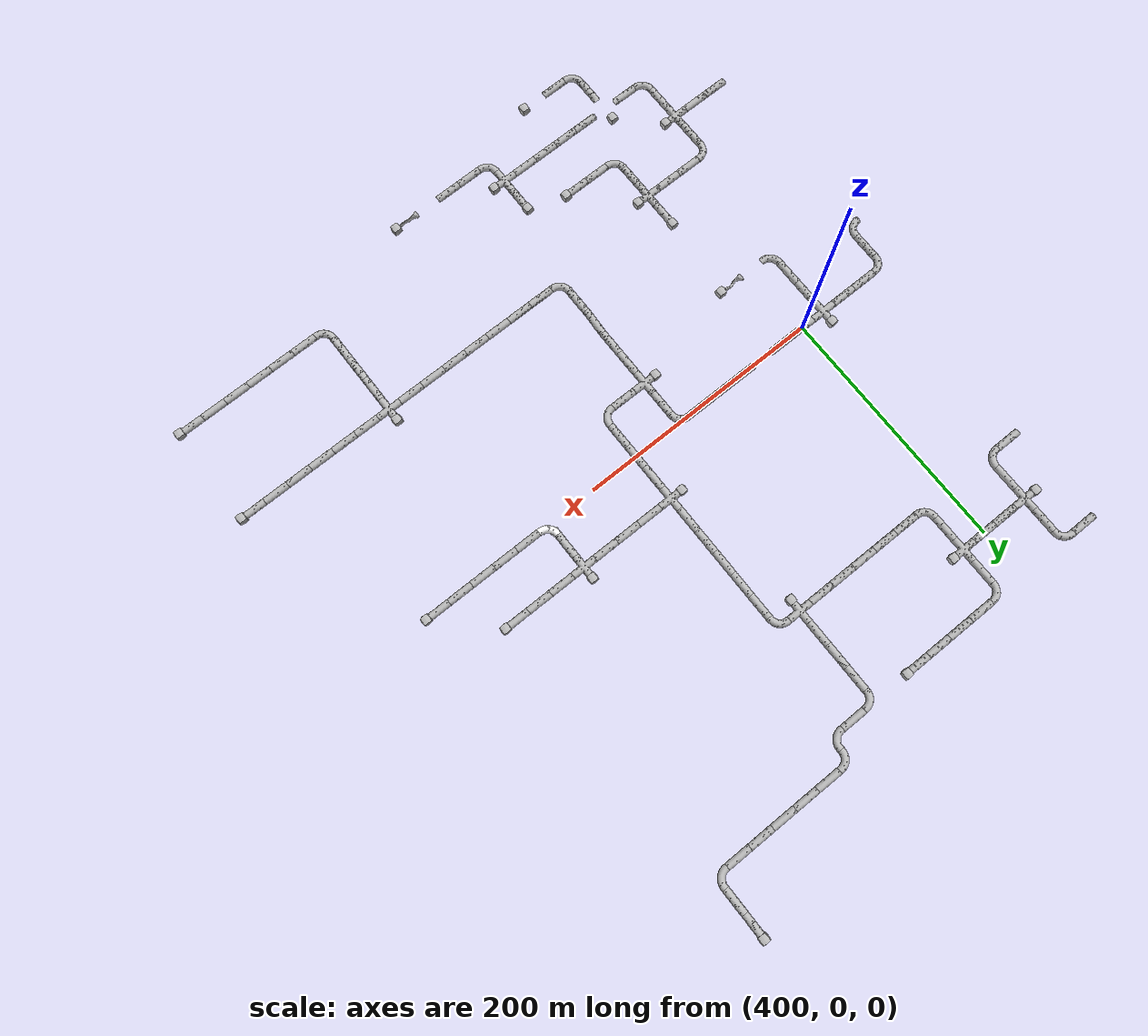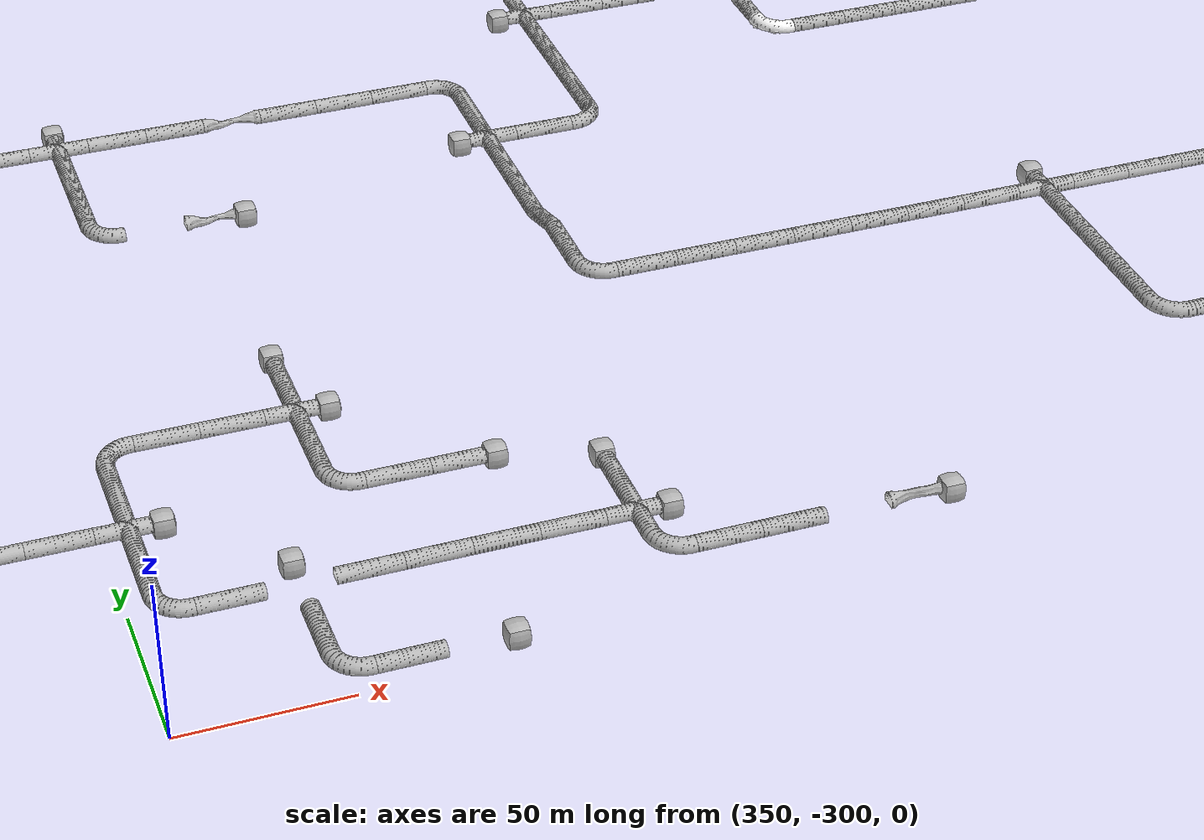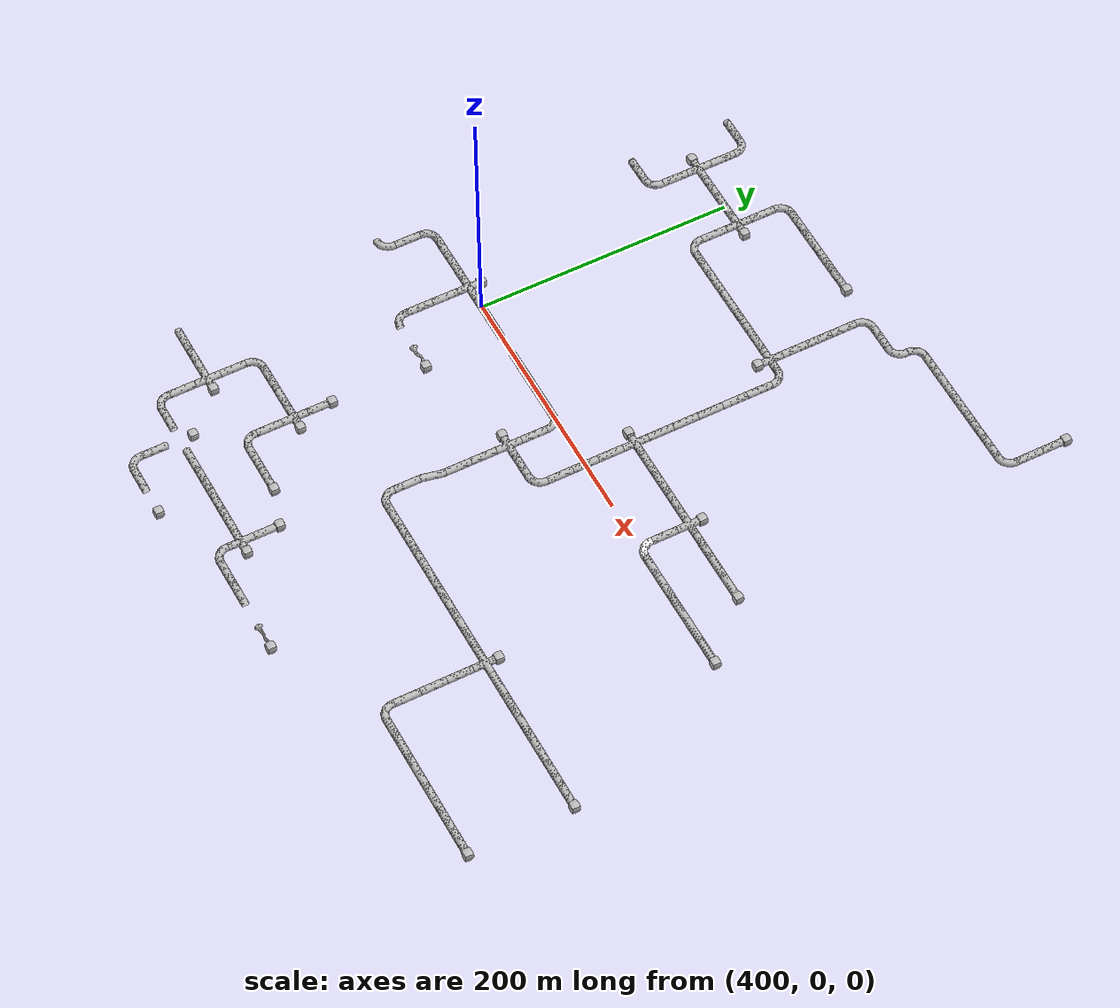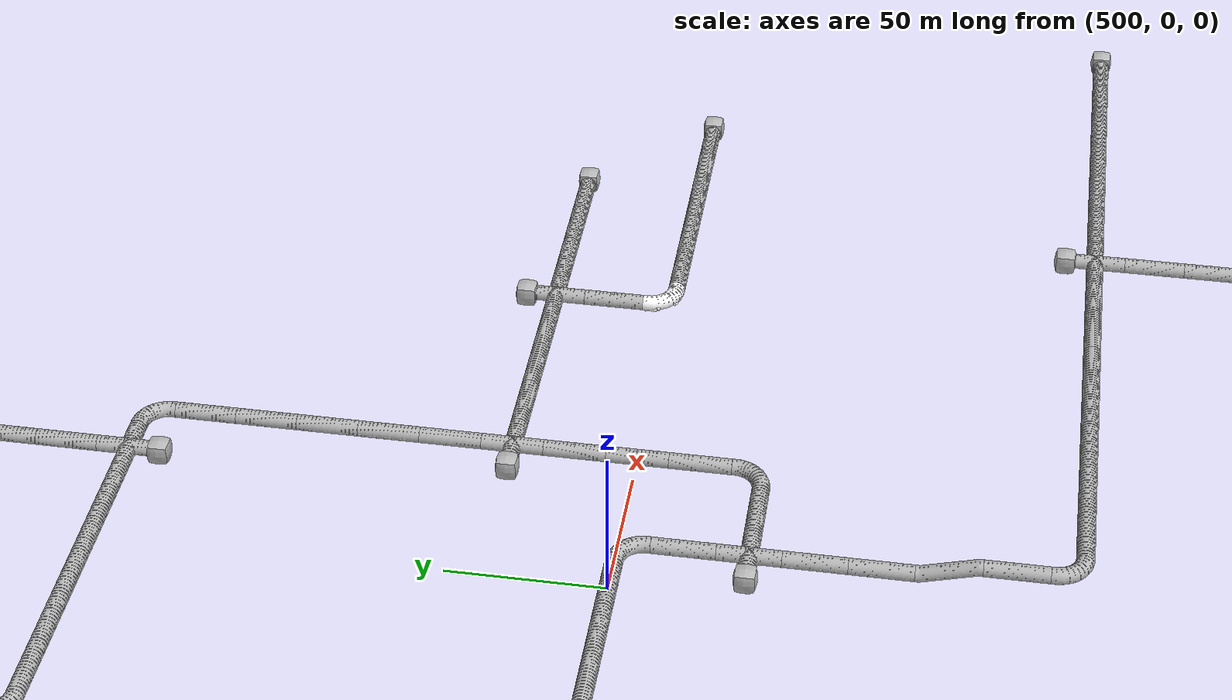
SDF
<sdf version="1.6">
 <world name="tunnel_circuit_02">
  <include>
   <name>tile_1</name>
   <uri>model://tunnel_tile_5</uri>
   <pose>700.000000 300.000000 0.000000 0 0 -3.141593</pose>
  </include>
  <include>
   <name>tile_2</name>
   <uri>model://tunnel_tile_blocker</uri>
   <pose>700.000000 310.000000 0.000000 0 0 0.000000</pose>
  </include>
  <include>
   <name>tile_5</name>
   <uri>model://tunnel_tile_5</uri>
   <pose>700.000000 280.000000 0.000000 0 0 -3.141593</pose>
  </include>
  <include>
   <name>tile_14</name>
   <uri>model://tunnel_tile_2</uri>
   <pose>580.000000 260.000000 0.000000 0 0 0.000000</pose>
  </include>
  <include>
   <name>tile_15</name>
   <uri>model://tunnel_tile_5</uri>
   <pose>600.000000 260.000000 0.000000 0 0 -1.570796</pose>
  </include>
  <include>
   <name>tile_16</name>
   <uri>model://tunnel_tile_5</uri>
   <pose>620.000000 260.000000 0.000000 0 0 -1.570796</pose>
  </include>
  <include>
   <name>tile_17</name>
   <uri>model://tunnel_tile_5</uri>
   <pose>640.000000 260.000000 0.000000 0 0 -1.570796</pose>
  </include>
  <include>
   <name>tile_18</name>
   <uri>model://tunnel_tile_5</uri>
   <pose>660.000000 260.000000 0.000000 0 0 -1.570796</pose>
  </include>
  <include>
   <name>tile_19</name>
   <uri>model://tunnel_tile_5</uri>
   <pose>680.000000 260.000000 0.000000 0 0 -1.570796</pose>
  </include>
  <include>
   <name>tile_20</name>
   <uri>model://tunnel_tile_2</uri>
   <pose>700.000000 260.000000 0.000000 0 0 -3.141593</pose>
  </include>
  <include>
   <name>tile_27</name>
   <uri>model://tunnel_tile_5</uri>
   <pose>340.000000 240.000000 0.000000 0 0 1.570796</pose>
  </include>
  <include>
   <name>tile_28</name>
   <uri>model://tunnel_tile_2</uri>
   <pose>360.000000 240.000000 0.000000 0 0 -1.570796</pose>
  </include>
  <include>
   <name>tile_29</name>
   <uri>model://tunnel_tile_2</uri>
   <pose>420.000000 240.000000 0.000000 0 0 0.000000</pose>
  </include>
  <include>
   <name>tile_30</name>
   <uri>model://tunnel_tile_5</uri>
   <pose>440.000000 240.000000 0.000000 0 0 -1.570796</pose>
  </include>
  <include>
   <name>tile_31</name>
   <uri>model://tunnel_tile_5</uri>
   <pose>460.000000 240.000000 0.000000 0 0 -1.570796</pose>
  </include>
  <include>
   <name>tile_32</name>
   <uri>model://tunnel_tile_5</uri>
   <pose>480.000000 240.000000 0.000000 0 0 -1.570796</pose>
  </include>
  <include>
   <name>tile_33</name>
   <uri>model://tunnel_tile_5</uri>
   <pose>500.000000 240.000000 0.000000 0 0 -1.570796</pose>
  </include>
  <include>
   <name>tile_34</name>
   <uri>model://tunnel_tile_blocker</uri>
   <pose>510.000000 240.000000 0.000000 0 0 0.000000</pose>
  </include>
  <include>
   <name>tile_35</name>
   <uri>model://tunnel_tile_2</uri>
   <pose>540.000000 240.000000 0.000000 0 0 0.000000</pose>
  </include>
  <include>
   <name>tile_36</name>
   <uri>model://tunnel_tile_5</uri>
   <pose>560.000000 240.000000 0.000000 0 0 -1.570796</pose>
  </include>
  <include>
   <name>tile_37</name>
   <uri>model://tunnel_tile_2</uri>
   <pose>580.000000 240.000000 0.000000 0 0 -3.141593</pose>
  </include>
  <include>
   <name>tile_41</name>
   <uri>model://tunnel_tile_5</uri>
   <pose>360.000000 220.000000 0.000000 0 0 -3.141593</pose>
  </include>
  <include>
   <name>tile_42</name>
   <uri>model://tunnel_tile_5</uri>
   <pose>420.000000 220.000000 0.000000 0 0 0.000000</pose>
  </include>
  <include>
   <name>tile_43</name>
   <uri>model://tunnel_tile_5</uri>
   <pose>540.000000 220.000000 0.000000 0 0 0.000000</pose>
  </include>
  <include>
   <name>phone_1</name>
   <uri>model://Phone</uri>
   <pose>540.450012 223.399994 0.000000 -1.570796 0 1.570796</pose>
  </include>
  <include>
   <name>tile_55</name>
   <uri>model://tunnel_tile_1</uri>
   <pose>360.000000 200.000000 0.000000 0 0 -1.570796</pose>
  </include>
  <include>
   <name>tile_56</name>
   <uri>model://tunnel_tile_blocker</uri>
   <pose>350.000000 200.000000 0.000000 0 0 0.000000</pose>
  </include>
  <include>
   <name>tile_57</name>
   <uri>model://tunnel_tile_5</uri>
   <pose>380.000000 200.000000 0.000000 0 0 -1.570796</pose>
  </include>
  <include>
   <name>tile_58</name>
   <uri>model://tunnel_tile_5</uri>
   <pose>400.000000 200.000000 0.000000 0 0 -1.570796</pose>
  </include>
  <include>
   <name>tile_59</name>
   <uri>model://tunnel_tile_1</uri>
   <pose>420.000000 200.000000 0.000000 0 0 -1.570796</pose>
  </include>
  <include>
   <name>tile_60</name>
   <uri>model://tunnel_tile_blocker</uri>
   <pose>430.000000 200.000000 0.000000 0 0 0.000000</pose>
  </include>
  <include>
   <name>tile_61</name>
   <uri>model://tunnel_tile_5</uri>
   <pose>540.000000 200.000000 0.000000 0 0 0.000000</pose>
  </include>
  <include>
   <name>tile_65</name>
   <uri>model://tunnel_tile_5</uri>
   <pose>360.000000 180.000000 0.000000 0 0 -3.141593</pose>
  </include>
  <include>
   <name>tile_66</name>
   <uri>model://tunnel_tile_5</uri>
   <pose>420.000000 180.000000 0.000000 0 0 0.000000</pose>
  </include>
  <include>
   <name>tile_67</name>
   <uri>model://tunnel_tile_5</uri>
   <pose>540.000000 180.000000 0.000000 0 0 0.000000</pose>
  </include>
  <include>
   <name>tile_76</name>
   <uri>model://tunnel_tile_5</uri>
   <pose>340.000000 160.000000 0.000000 0 0 1.570796</pose>
  </include>
  <include>
   <name>tile_77</name>
   <uri>model://tunnel_tile_2</uri>
   <pose>360.000000 160.000000 0.000000 0 0 -3.141593</pose>
  </include>
  <include>
   <name>tile_78</name>
   <uri>model://tunnel_tile_2</uri>
   <pose>420.000000 160.000000 0.000000 0 0 1.570796</pose>
  </include>
  <include>
   <name>tile_79</name>
   <uri>model://tunnel_tile_5</uri>
   <pose>440.000000 160.000000 0.000000 0 0 1.570796</pose>
  </include>
  <include>
   <name>tile_80</name>
   <uri>model://tunnel_tile_5</uri>
   <pose>460.000000 160.000000 0.000000 0 0 1.570796</pose>
  </include>
  <include>
   <name>tile_81</name>
   <uri>model://tunnel_tile_5</uri>
   <pose>480.000000 160.000000 0.000000 0 0 1.570796</pose>
  </include>
  <include>
   <name>tile_82</name>
   <uri>model://tunnel_tile_5</uri>
   <pose>500.000000 160.000000 0.000000 0 0 1.570796</pose>
  </include>
  <include>
   <name>tile_83</name>
   <uri>model://tunnel_tile_5</uri>
   <pose>520.000000 160.000000 0.000000 0 0 1.570796</pose>
  </include>
  <include>
   <name>tile_84</name>
   <uri>model://tunnel_tile_1</uri>
   <pose>540.000000 160.000000 0.000000 0 0 -3.141593</pose>
  </include>
  <include>
   <name>tile_85</name>
   <uri>model://tunnel_tile_blocker</uri>
   <pose>540.000000 150.000000 0.000000 0 0 0.000000</pose>
  </include>
  <include>
   <name>tile_86</name>
   <uri>model://tunnel_tile_2</uri>
   <pose>560.000000 160.000000 0.000000 0 0 -1.570796</pose>
  </include>
  <include>
   <name>tile_89</name>
   <uri>model://tunnel_tile_5</uri>
   <pose>560.000000 140.000000 0.000000 0 0 0.000000</pose>
  </include>
  <include>
   <name>tile_92</name>
   <uri>model://tunnel_tile_5</uri>
   <pose>560.000000 120.000000 0.000000 0 0 0.000000</pose>
  </include>
  <include>
   <name>tile_96</name>
   <uri>model://tunnel_tile_5</uri>
   <pose>560.000000 100.000000 0.000000 0 0 0.000000</pose>
  </include>
  <include>
   <name>tile_99</name>
   <uri>model://tunnel_tile_5</uri>
   <pose>560.000000 80.000000 0.000000 0 0 0.000000</pose>
  </include>
  <include>
   <name>tile_101</name>
   <uri>model://tunnel_tile_5</uri>
   <pose>560.000000 60.000000 0.000000 0 0 0.000000</pose>
  </include>
  <include>
   <name>tile_108</name>
   <uri>model://tunnel_tile_1</uri>
   <pose>560.000000 40.000000 0.000000 0 0 0.000000</pose>
  </include>
  <include>
   <name>tile_109</name>
   <uri>model://tunnel_tile_blocker</uri>
   <pose>550.000000 40.000000 0.000000 0 0 0.000000</pose>
  </include>
  <include>
   <name>tile_110</name>
   <uri>model://tunnel_tile_5</uri>
   <pose>580.000000 40.000000 0.000000 0 0 -1.570796</pose>
  </include>
  <include>
   <name>tile_111</name>
   <uri>model://tunnel_tile_5</uri>
   <pose>600.000000 40.000000 0.000000 0 0 -1.570796</pose>
  </include>
  <include>
   <name>tile_112</name>
   <uri>model://tunnel_tile_5</uri>
   <pose>620.000000 40.000000 0.000000 0 0 -1.570796</pose>
  </include>
  <include>
   <name>tile_113</name>
   <uri>model://tunnel_tile_1</uri>
   <pose>640.000000 40.000000 0.000000 0 0 -1.570796</pose>
  </include>
  <include>
   <name>tile_114</name>
   <uri>model://tunnel_tile_blocker</uri>
   <pose>640.000000 50.000000 0.000000 0 0 0.000000</pose>
  </include>
  <include>
   <name>tile_115</name>
   <uri>model://tunnel_tile_5</uri>
   <pose>660.000000 40.000000 0.000000 0 0 -1.570796</pose>
  </include>
  <include>
   <name>tile_116</name>
   <uri>model://tunnel_tile_5</uri>
   <pose>680.000000 40.000000 0.000000 0 0 -1.570796</pose>
  </include>
  <include>
   <name>tile_117</name>
   <uri>model://tunnel_tile_5</uri>
   <pose>700.000000 40.000000 0.000000 0 0 -1.570796</pose>
  </include>
  <include>
   <name>tile_118</name>
   <uri>model://tunnel_tile_blocker</uri>
   <pose>710.000000 40.000000 0.000000 0 0 0.000000</pose>
  </include>
  <include>
   <name>tile_123</name>
   <uri>model://tunnel_tile_5</uri>
   <pose>560.000000 20.000000 0.000000 0 0 0.000000</pose>
  </include>
  <include>
   <name>tile_124</name>
   <uri>model://tunnel_tile_5</uri>
   <pose>640.000000 20.000000 0.000000 0 0 -3.141593</pose>
  </include>
  <include>
   <name>tile_139</name>
   <uri>model://tunnel_tile_2</uri>
   <pose>320.000000 0.000000 0.000000 0 0 0.000000</pose>
  </include>
  <include>
   <name>tile_140</name>
   <uri>model://tunnel_tile_5</uri>
   <pose>340.000000 0.000000 0.000000 0 0 -1.570796</pose>
  </include>
  <include>
   <name>tile_141</name>
   <uri>model://tunnel_tile_5</uri>
   <pose>360.000000 0.000000 0.000000 0 0 -1.570796</pose>
  </include>
  <include>
   <name>tile_142</name>
   <uri>model://tunnel_tile_1</uri>
   <pose>380.000000 0.000000 0.000000 0 0 -1.570796</pose>
  </include>
  <include>
   <name>tile_143</name>
   <uri>model://tunnel_tile_blocker</uri>
   <pose>380.000000 10.000000 0.000000 0 0 0.000000</pose>
  </include>
  <include>
   <name>tile_144</name>
   <uri>model://tunnel_tile_5</uri>
   <pose>400.000000 0.000000 0.000000 0 0 1.570796</pose>
  </include>
  <include>
   <name>tile_145</name>
   <uri>model://tunnel_tile_5</uri>
   <pose>420.000000 0.000000 0.000000 0 0 1.570796</pose>
  </include>
  <include>
   <name>tile_146</name>
   <uri>model://constrained_tunnel_tile_short</uri>
   <pose>440.000000 0.000000 0.000000 0 0 1.570796</pose>
  </include>
  <include>
   <name>tile_147</name>
   <uri>model://tunnel_tile_5</uri>
   <pose>460.000000 0.000000 0.000000 0 0 1.570796</pose>
  </include>
  <include>
   <name>tile_148</name>
   <uri>model://tunnel_tile_5</uri>
   <pose>480.000000 0.000000 0.000000 0 0 1.570796</pose>
  </include>
  <include>
   <name>tile_149</name>
   <uri>model://tunnel_tile_5</uri>
   <pose>500.000000 0.000000 0.000000 0 0 1.570796</pose>
  </include>
  <include>
   <name>tile_150</name>
   <uri>model://tunnel_tile_2</uri>
   <pose>520.000000 0.000000 0.000000 0 0 -1.570796</pose>
  </include>
  <include>
   <name>tile_151</name>
   <uri>model://tunnel_tile_5</uri>
   <pose>560.000000 0.000000 0.000000 0 0 0.000000</pose>
  </include>
  <include>
   <name>tile_152</name>
   <uri>model://Rough Tunnel Tile 90-degree Turn</uri>
   <pose>640.000000 0.000000 0.000000 0 0 1.570796</pose>
  </include>
  <include>
   <name>tile_153</name>
   <uri>model://tunnel_tile_5</uri>
   <pose>660.000000 0.000000 0.000000 0 0 1.570796</pose>
  </include>
  <include>
   <name>tile_154</name>
   <uri>model://tunnel_tile_5</uri>
   <pose>680.000000 0.000000 0.000000 0 0 1.570796</pose>
  </include>
  <include>
   <name>tile_155</name>
   <uri>model://tunnel_tile_5</uri>
   <pose>700.000000 0.000000 0.000000 0 0 1.570796</pose>
  </include>
  <include>
   <name>tile_156</name>
   <uri>model://tunnel_tile_5</uri>
   <pose>720.000000 0.000000 0.000000 0 0 1.570796</pose>
  </include>
  <include>
   <name>tile_157</name>
   <uri>model://tunnel_tile_5</uri>
   <pose>740.000000 0.000000 0.000000 0 0 1.570796</pose>
  </include>
  <include>
   <name>tile_158</name>
   <uri>model://tunnel_tile_blocker</uri>
   <pose>750.000000 0.000000 0.000000 0 0 0.000000</pose>
  </include>
  <include>
   <name>tile_162</name>
   <uri>model://tunnel_tile_5</uri>
   <pose>320.000000 -20.000000 0.000000 0 0 -3.141593</pose>
  </include>
  <include>
   <name>tile_163</name>
   <uri>model://tunnel_tile_5</uri>
   <pose>380.000000 -20.000000 0.000000 0 0 -3.141593</pose>
  </include>
  <include>
   <name>tile_164</name>
   <uri>model://tunnel_tile_5</uri>
   <pose>520.000000 -20.000000 0.000000 0 0 -3.141593</pose>
  </include>
  <include>
   <name>tile_165</name>
   <uri>model://tunnel_tile_5</uri>
   <pose>560.000000 -20.000000 0.000000 0 0 0.000000</pose>
  </include>
  <include>
   <name>backpack_3</name>
   <uri>model://Backpack</uri>
   <pose>560.992004 -7.976880 0.100000 -1.570796 0 -3.141593</pose>
  </include>
  <include>
   <name>tile_175</name>
   <uri>model://tunnel_tile_2</uri>
   <pose>320.000000 -40.000000 0.000000 0 0 -3.141593</pose>
  </include>
  <include>
   <name>tile_176</name>
   <uri>model://tunnel_tile_5</uri>
   <pose>380.000000 -40.000000 0.000000 0 0 -3.141593</pose>
  </include>
  <include>
   <name>tile_177</name>
   <uri>model://tunnel_tile_1</uri>
   <pose>520.000000 -40.000000 0.000000 0 0 -3.141593</pose>
  </include>
  <include>
   <name>tile_178</name>
   <uri>model://tunnel_tile_blocker</uri>
   <pose>510.000000 -40.000000 0.000000 0 0 0.000000</pose>
  </include>
  <include>
   <name>tile_179</name>
   <uri>model://tunnel_tile_5</uri>
   <pose>540.000000 -40.000000 0.000000 0 0 1.570796</pose>
  </include>
  <include>
   <name>tile_180</name>
   <uri>model://tunnel_tile_2</uri>
   <pose>560.000000 -40.000000 0.000000 0 0 -3.141593</pose>
  </include>
  <include>
   <name>tile_184</name>
   <uri>model://tunnel_tile_2</uri>
   <pose>380.000000 -60.000000 0.000000 0 0 1.570796</pose>
  </include>
  <include>
   <name>tile_186</name>
   <uri>model://constrained_tunnel_tile_short</uri>
   <pose>420.000000 -60.000000 0.000000 0 0 1.570796</pose>
  </include>
  <include>
   <name>tile_187</name>
   <uri>model://tunnel_tile_blocker</uri>
   <pose>430.000000 -60.000000 0.000000 0 0 0.000000</pose>
  </include>
  <include>
   <name>tile_188</name>
   <uri>model://tunnel_tile_5</uri>
   <pose>520.000000 -60.000000 0.000000 0 0 -3.141593</pose>
  </include>
  <include>
   <name>tile_193</name>
   <uri>model://tunnel_tile_5</uri>
   <pose>520.000000 -80.000000 0.000000 0 0 -3.141593</pose>
  </include>
  <include>
   <name>tile_197</name>
   <uri>model://tunnel_tile_6</uri>
   <pose>520.000000 -100.000000 0.000000 0 0 -3.141593</pose>
  </include>
  <include>
   <name>tile_208</name>
   <uri>model://tunnel_tile_5</uri>
   <pose>520.000000 -120.000000 5.000000 0 0 -3.141593</pose>
  </include>
  <include>
   <name>tile_213</name>
   <uri>model://tunnel_tile_5</uri>
   <pose>420.000000 -140.000000 -10.000000 0 0 0.000000</pose>
  </include>
  <include>
   <name>tile_214</name>
   <uri>model://tunnel_tile_blocker</uri>
   <pose>420.000000 -130.000000 -10.000000 0 0 0.000000</pose>
  </include>
  <include>
   <name>tile_215</name>
   <uri>model://tunnel_tile_2</uri>
   <pose>520.000000 -140.000000 5.000000 0 0 1.570796</pose>
  </include>
  <include>
   <name>tile_216</name>
   <uri>model://tunnel_tile_5</uri>
   <pose>540.000000 -140.000000 5.000000 0 0 1.570796</pose>
  </include>
  <include>
   <name>tile_217</name>
   <uri>model://tunnel_tile_5</uri>
   <pose>560.000000 -140.000000 5.000000 0 0 1.570796</pose>
  </include>
  <include>
   <name>tile_218</name>
   <uri>model://tunnel_tile_5</uri>
   <pose>580.000000 -140.000000 5.000000 0 0 1.570796</pose>
  </include>
  <include>
   <name>tile_219</name>
   <uri>model://tunnel_tile_5</uri>
   <pose>600.000000 -140.000000 5.000000 0 0 1.570796</pose>
  </include>
  <include>
   <name>tile_220</name>
   <uri>model://tunnel_tile_5</uri>
   <pose>620.000000 -140.000000 5.000000 0 0 1.570796</pose>
  </include>
  <include>
   <name>tile_221</name>
   <uri>model://tunnel_tile_5</uri>
   <pose>640.000000 -140.000000 5.000000 0 0 1.570796</pose>
  </include>
  <include>
   <name>tile_222</name>
   <uri>model://tunnel_tile_5</uri>
   <pose>660.000000 -140.000000 5.000000 0 0 1.570796</pose>
  </include>
  <include>
   <name>tile_223</name>
   <uri>model://tunnel_tile_1</uri>
   <pose>680.000000 -140.000000 5.000000 0 0 1.570796</pose>
  </include>
  <include>
   <name>tile_224</name>
   <uri>model://tunnel_tile_blocker</uri>
   <pose>680.000000 -130.000000 5.000000 0 0 0.000000</pose>
  </include>
  <include>
   <name>tile_225</name>
   <uri>model://tunnel_tile_5</uri>
   <pose>700.000000 -140.000000 5.000000 0 0 1.570796</pose>
  </include>
  <include>
   <name>tile_226</name>
   <uri>model://tunnel_tile_5</uri>
   <pose>720.000000 -140.000000 5.000000 0 0 1.570796</pose>
  </include>
  <include>
   <name>tile_227</name>
   <uri>model://tunnel_tile_5</uri>
   <pose>740.000000 -140.000000 5.000000 0 0 1.570796</pose>
  </include>
  <include>
   <name>tile_228</name>
   <uri>model://tunnel_tile_5</uri>
   <pose>760.000000 -140.000000 5.000000 0 0 1.570796</pose>
  </include>
  <include>
   <name>tile_229</name>
   <uri>model://tunnel_tile_5</uri>
   <pose>780.000000 -140.000000 5.000000 0 0 1.570796</pose>
  </include>
  <include>
   <name>tile_230</name>
   <uri>model://tunnel_tile_5</uri>
   <pose>800.000000 -140.000000 5.000000 0 0 1.570796</pose>
  </include>
  <include>
   <name>tile_231</name>
   <uri>model://tunnel_tile_blocker</uri>
   <pose>810.000000 -140.000000 5.000000 0 0 0.000000</pose>
  </include>
  <include>
   <name>tile_244</name>
   <uri>model://tunnel_tile_2</uri>
   <pose>360.000000 -160.000000 -10.000000 0 0 0.000000</pose>
  </include>
  <include>
   <name>tile_245</name>
   <uri>model://tunnel_tile_5</uri>
   <pose>380.000000 -160.000000 -10.000000 0 0 -1.570796</pose>
  </include>
  <include>
   <name>tile_246</name>
   <uri>model://tunnel_tile_5</uri>
   <pose>400.000000 -160.000000 -10.000000 0 0 -1.570796</pose>
  </include>
  <include>
   <name>tile_247</name>
   <uri>model://tunnel_tile_1</uri>
   <pose>420.000000 -160.000000 -10.000000 0 0 -1.570796</pose>
  </include>
  <include>
   <name>tile_248</name>
   <uri>model://tunnel_tile_blocker</uri>
   <pose>430.000000 -160.000000 -10.000000 0 0 0.000000</pose>
  </include>
  <include>
   <name>tile_249</name>
   <uri>model://tunnel_tile_5</uri>
   <pose>680.000000 -160.000000 5.000000 0 0 -3.141593</pose>
  </include>
  <include>
   <name>tile_253</name>
   <uri>model://tunnel_tile_5</uri>
   <pose>360.000000 -180.000000 -10.000000 0 0 0.000000</pose>
  </include>
  <include>
   <name>tile_254</name>
   <uri>model://tunnel_tile_5</uri>
   <pose>420.000000 -180.000000 -10.000000 0 0 -3.141593</pose>
  </include>
  <include>
   <name>tile_255</name>
   <uri>model://tunnel_tile_5</uri>
   <pose>680.000000 -180.000000 5.000000 0 0 -3.141593</pose>
  </include>
  <include>
   <name>tile_263</name>
   <uri>model://tunnel_tile_5</uri>
   <pose>320.000000 -200.000000 -10.000000 0 0 1.570796</pose>
  </include>
  <include>
   <name>tile_264</name>
   <uri>model://tunnel_tile_5</uri>
   <pose>340.000000 -200.000000 -10.000000 0 0 1.570796</pose>
  </include>
  <include>
   <name>tile_265</name>
   <uri>model://tunnel_tile_1</uri>
   <pose>360.000000 -200.000000 -10.000000 0 0 1.570796</pose>
  </include>
  <include>
   <name>tile_266</name>
   <uri>model://tunnel_tile_blocker</uri>
   <pose>370.000000 -200.000000 -10.000000 0 0 0.000000</pose>
  </include>
  <include>
   <name>tile_267</name>
   <uri>model://tunnel_tile_2</uri>
   <pose>420.000000 -200.000000 -10.000000 0 0 1.570796</pose>
  </include>
  <include>
   <name>tile_268</name>
   <uri>model://tunnel_tile_5</uri>
   <pose>440.000000 -200.000000 -10.000000 0 0 1.570796</pose>
  </include>
  <include>
   <name>tile_269</name>
   <uri>model://tunnel_tile_5</uri>
   <pose>460.000000 -200.000000 -10.000000 0 0 1.570796</pose>
  </include>
  <include>
   <name>tile_270</name>
   <uri>model://tunnel_tile_blocker</uri>
   <pose>470.000000 -200.000000 -10.000000 0 0 0.000000</pose>
  </include>
  <include>
   <name>tile_271</name>
   <uri>model://tunnel_tile_5</uri>
   <pose>680.000000 -200.000000 5.000000 0 0 -3.141593</pose>
  </include>
  <include>
   <name>tile_277</name>
   <uri>model://tunnel_tile_5</uri>
   <pose>360.000000 -220.000000 -10.000000 0 0 0.000000</pose>
  </include>
  <include>
   <name>tile_278</name>
   <uri>model://tunnel_tile_5</uri>
   <pose>500.000000 -220.000000 -10.000000 0 0 0.000000</pose>
  </include>
  <include>
   <name>tile_279</name>
   <uri>model://tunnel_tile_blocker</uri>
   <pose>500.000000 -210.000000 -10.000000 0 0 0.000000</pose>
  </include>
  <include>
   <name>tile_280</name>
   <uri>model://tunnel_tile_2</uri>
   <pose>680.000000 -220.000000 5.000000 0 0 1.570796</pose>
  </include>
  <include>
   <name>phone_3</name>
   <uri>model://Phone</uri>
   <pose>678.984009 -211.507996 5.006000 -1.570796 0 1.570796</pose>
  </include>
  <include>
   <name>tile_281</name>
   <uri>model://tunnel_tile_5</uri>
   <pose>700.000000 -220.000000 5.000000 0 0 1.570796</pose>
  </include>
  <include>
   <name>tile_282</name>
   <uri>model://tunnel_tile_5</uri>
   <pose>720.000000 -220.000000 5.000000 0 0 1.570796</pose>
  </include>
  <include>
   <name>tile_283</name>
   <uri>model://tunnel_tile_5</uri>
   <pose>740.000000 -220.000000 5.000000 0 0 1.570796</pose>
  </include>
  <include>
   <name>tile_284</name>
   <uri>model://tunnel_tile_5</uri>
   <pose>760.000000 -220.000000 5.000000 0 0 1.570796</pose>
  </include>
  <include>
   <name>tile_285</name>
   <uri>model://tunnel_tile_5</uri>
   <pose>780.000000 -220.000000 5.000000 0 0 1.570796</pose>
  </include>
  <include>
   <name>tile_286</name>
   <uri>model://tunnel_tile_5</uri>
   <pose>800.000000 -220.000000 5.000000 0 0 1.570796</pose>
  </include>
  <include>
   <name>tile_287</name>
   <uri>model://tunnel_tile_blocker</uri>
   <pose>810.000000 -220.000000 5.000000 0 0 0.000000</pose>
  </include>
  <include>
   <name>tile_289</name>
   <uri>model://tunnel_tile_2</uri>
   <pose>360.000000 -240.000000 -10.000000 0 0 1.570796</pose>
  </include>
  <include>
   <name>tile_290</name>
   <uri>model://tunnel_tile_5</uri>
   <pose>380.000000 -240.000000 -10.000000 0 0 1.570796</pose>
  </include>
  <include>
   <name>tile_292</name>
   <uri>model://tunnel_tile_blocker</uri>
   <pose>400.000000 -230.000000 -10.000000 0 0 0.000000</pose>
  </include>
  <include>
   <name>tile_293</name>
   <uri>model://tunnel_tile_5</uri>
   <pose>420.000000 -240.000000 -10.000000 0 0 1.570796</pose>
  </include>
  <include>
   <name>tile_294</name>
   <uri>model://tunnel_tile_5</uri>
   <pose>440.000000 -240.000000 -10.000000 0 0 1.570796</pose>
  </include>
  <include>
   <name>tile_295</name>
   <uri>model://tunnel_tile_5</uri>
   <pose>460.000000 -240.000000 -10.000000 0 0 1.570796</pose>
  </include>
  <include>
   <name>tile_296</name>
   <uri>model://tunnel_tile_5</uri>
   <pose>480.000000 -240.000000 -10.000000 0 0 1.570796</pose>
  </include>
  <include>
   <name>tile_297</name>
   <uri>model://tunnel_tile_1</uri>
   <pose>500.000000 -240.000000 -10.000000 0 0 0.000000</pose>
  </include>
  <include>
   <name>tile_298</name>
   <uri>model://tunnel_tile_blocker</uri>
   <pose>510.000000 -240.000000 -10.000000 0 0 0.000000</pose>
  </include>
  <include>
   <name>tile_313</name>
   <uri>model://tunnel_tile_5</uri>
   <pose>400.000000 -260.000000 -10.000000 0 0 0.000000</pose>
  </include>
  <include>
   <name>phone_4</name>
   <uri>model://Phone</uri>
   <pose>417.500000 -242.475998 -10.002000 -0.349066 0 -3.141593</pose>
  </include>
  <include>
   <name>tile_314</name>
   <uri>model://tunnel_tile_2</uri>
   <pose>500.000000 -260.000000 -10.000000 0 0 1.570796</pose>
  </include>
  <include>
   <name>tile_315</name>
   <uri>model://tunnel_tile_5</uri>
   <pose>520.000000 -260.000000 -10.000000 0 0 1.570796</pose>
  </include>
  <include>
   <name>tile_316</name>
   <uri>model://tunnel_tile_5</uri>
   <pose>540.000000 -260.000000 -10.000000 0 0 1.570796</pose>
  </include>
  <include>
   <name>tile_318</name>
   <uri>model://constrained_tunnel_tile_tall</uri>
   <pose>580.000000 -260.000000 -10.000000 0 0 1.570796</pose>
  </include>
  <include>
   <name>tile_319</name>
   <uri>model://tunnel_tile_blocker</uri>
   <pose>590.000000 -260.000000 -10.000000 0 0 0.000000</pose>
  </include>
  <include>
   <name>tile_326</name>
   <uri>model://tunnel_tile_2</uri>
   <pose>400.000000 -280.000000 -10.000000 0 0 1.570796</pose>
  </include>
  <include>
   <name>tile_327</name>
   <uri>model://tunnel_tile_5</uri>
   <pose>420.000000 -280.000000 -10.000000 0 0 1.570796</pose>
  </include>
  <include>
   <name>backpack_4</name>
   <uri>model://Backpack</uri>
   <pose>429.436005 -280.386993 -10.007400 0 0 1.570796</pose>
  </include>
  <include>
   <name>tile_329</name>
   <uri>model://tunnel_tile_blocker</uri>
   <pose>450.000000 -280.000000 -10.000000 0 0 0.000000</pose>
  </include>
 </world>
</sdf>
